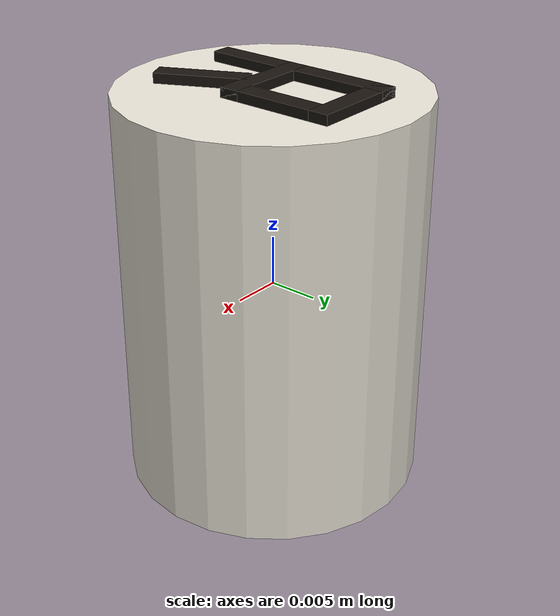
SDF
<?xml version="1.0" ?>
<sdf version="1.9">
  <model name="rook_white">
    <static>false</static>
    <pose>0 0 0 0 0 0</pose>

    <link name="link">

      <inertial>
        <mass>0.05</mass>
        <inertia>
          <ixx>0.00002</ixx>
          <iyy>0.00002</iyy>
          <izz>0.00001</izz>
        </inertia>
      </inertial>

      <collision name="collision">
        <geometry>
          <cylinder>
            <radius>0.015</radius>
            <length>0.04</length>
          </cylinder>
        </geometry>
        <surface>
          <friction>
            <ode>
              <mu>1.8</mu>
              <mu2>1.8</mu2>
            </ode>
          </friction>
        </surface>
      </collision>

      <visual name="visual">
        <geometry>
          <cylinder>
            <radius>0.015</radius>
            <length>0.04</length>
          </cylinder>
        </geometry>
        <material>
          <ambient>0.92 0.90 0.85 1</ambient>
          <diffuse>0.92 0.90 0.85 1</diffuse>
        </material>
      </visual>

      <!-- "R" imprint: P-shape + diagonal leg. -->
      <visual name="letter_stem">
        <pose>-0.004 0 0.0205 0 0 0</pose>
        <geometry><box><size>0.002 0.020 0.001</size></box></geometry>
        <material>
          <ambient>0.10 0.08 0.06 1</ambient>
          <diffuse>0.10 0.08 0.06 1</diffuse>
        </material>
      </visual>
      <visual name="letter_top">
        <pose>0 0.009 0.0205 0 0 0</pose>
        <geometry><box><size>0.010 0.002 0.001</size></box></geometry>
        <material>
          <ambient>0.10 0.08 0.06 1</ambient>
          <diffuse>0.10 0.08 0.06 1</diffuse>
        </material>
      </visual>
      <visual name="letter_middle">
        <pose>0 -0.001 0.0205 0 0 0</pose>
        <geometry><box><size>0.010 0.002 0.001</size></box></geometry>
        <material>
          <ambient>0.10 0.08 0.06 1</ambient>
          <diffuse>0.10 0.08 0.06 1</diffuse>
        </material>
      </visual>
      <visual name="letter_loop_right">
        <pose>0.004 0.003 0.0205 0 0 0</pose>
        <geometry><box><size>0.002 0.010 0.001</size></box></geometry>
        <material>
          <ambient>0.10 0.08 0.06 1</ambient>
          <diffuse>0.10 0.08 0.06 1</diffuse>
        </material>
      </visual>
      <visual name="letter_leg">
        <pose>0.003 -0.006 0.0205 0 0 -1.107</pose>
        <geometry><box><size>0.00894 0.002 0.001</size></box></geometry>
        <material>
          <ambient>0.10 0.08 0.06 1</ambient>
          <diffuse>0.10 0.08 0.06 1</diffuse>
        </material>
      </visual>

    </link>
  </model>
</sdf>
